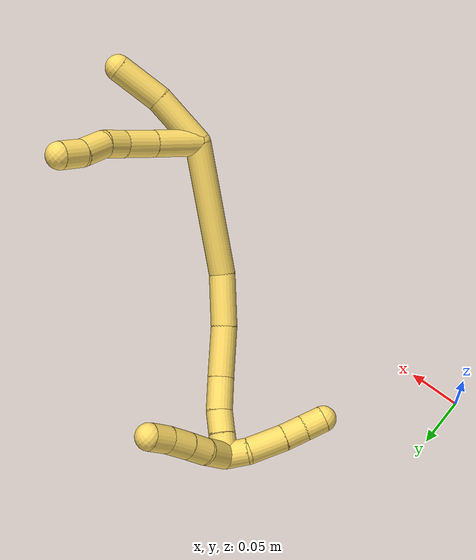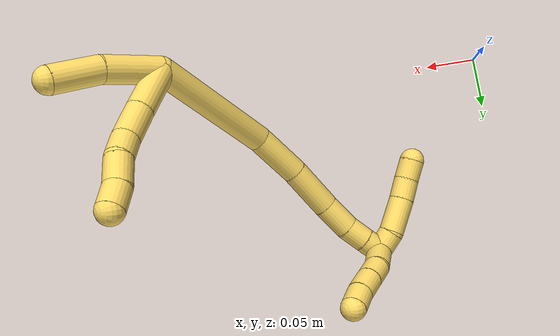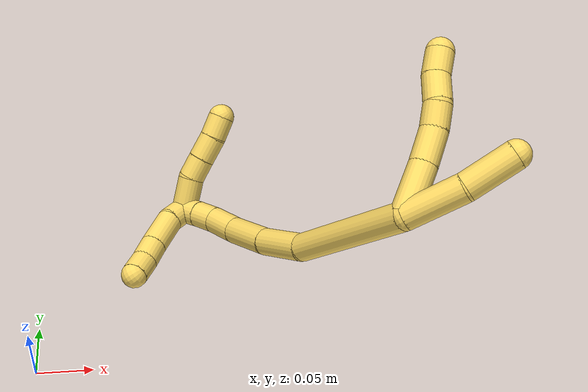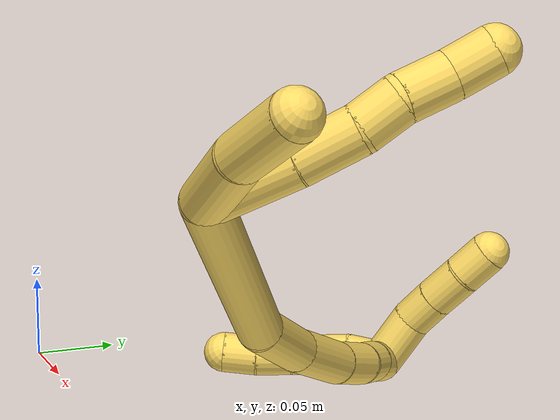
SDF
<sdf version="1.7">
 <world name="default">
  <model name="5">
   <static>0</static>
   <link name="5">
    <collision name="collision-cylinder-e_1_2_8">
     <pose>-0.013794 0.010581 0.015508 -0.598735 -0.633657 0.201705</pose>
     <geometry><cylinder><radius>0.0125</radius><length>0.046593</length></cylinder></geometry>
     <surface>
      <friction><ode><mu>1.16</mu><mu2>1.16</mu2><slip1>0</slip1><slip2>0</slip2></ode></friction>
      <contact><ode><kp>1e+06</kp><kd>1</kd><max_vel>0</max_vel><min_depth>0.001</min_depth></ode></contact>
     </surface>
    </collision>
    <visual name="visual-cylinder-e_1_2_8">
     <pose>-0.013794 0.010581 0.015508 -0.598735 -0.633657 0.201705</pose>
     <geometry><cylinder><radius>0.0125</radius><length>0.046593</length></cylinder></geometry>
     <material><ambient>1 0.858824 0.4 1</ambient></material>
    </visual>
    <collision name="collision-cylinder-e_2_8_9">
     <pose>-0.037896 0.027601 0.041516 -0.550126 -0.696838 0.20431</pose>
     <geometry><cylinder><radius>0.0125</radius><length>0.032123</length></cylinder></geometry>
     <surface>
      <friction><ode><mu>1.16</mu><mu2>1.16</mu2><slip1>0</slip1><slip2>0</slip2></ode></friction>
      <contact><ode><kp>1e+06</kp><kd>1</kd><max_vel>0</max_vel><min_depth>0.001</min_depth></ode></contact>
     </surface>
    </collision>
    <visual name="visual-cylinder-e_2_8_9">
     <pose>-0.037896 0.027601 0.041516 -0.550126 -0.696838 0.20431</pose>
     <geometry><cylinder><radius>0.0125</radius><length>0.032123</length></cylinder></geometry>
     <material><ambient>1 0.858824 0.4 1</ambient></material>
    </visual>
    <collision name="collision-cylinder-e_3_9_10">
     <pose>-0.056779 0.036948 0.058639 -0.413625 -0.870072 0.194398</pose>
     <geometry><cylinder><radius>0.0125</radius><length>0.022437</length></cylinder></geometry>
     <surface>
      <friction><ode><mu>1.16</mu><mu2>1.16</mu2><slip1>0</slip1><slip2>0</slip2></ode></friction>
      <contact><ode><kp>1e+06</kp><kd>1</kd><max_vel>0</max_vel><min_depth>0.001</min_depth></ode></contact>
     </surface>
    </collision>
    <visual name="visual-cylinder-e_3_9_10">
     <pose>-0.056779 0.036948 0.058639 -0.413625 -0.870072 0.194398</pose>
     <geometry><cylinder><radius>0.0125</radius><length>0.022437</length></cylinder></geometry>
     <material><ambient>1 0.858824 0.4 1</ambient></material>
    </visual>
    <collision name="collision-cylinder-e_4_10_11">
     <pose>-0.076038 0.045686 0.069958 -0.892914 -0.959608 0.48825</pose>
     <geometry><cylinder><radius>0.0125</radius><length>0.02609</length></cylinder></geometry>
     <surface>
      <friction><ode><mu>1.16</mu><mu2>1.16</mu2><slip1>0</slip1><slip2>0</slip2></ode></friction>
      <contact><ode><kp>1e+06</kp><kd>1</kd><max_vel>0</max_vel><min_depth>0.001</min_depth></ode></contact>
     </surface>
    </collision>
    <visual name="visual-cylinder-e_4_10_11">
     <pose>-0.076038 0.045686 0.069958 -0.892914 -0.959608 0.48825</pose>
     <geometry><cylinder><radius>0.0125</radius><length>0.02609</length></cylinder></geometry>
     <material><ambient>1 0.858824 0.4 1</ambient></material>
    </visual>
    <collision name="collision-cylinder-e_5_11_6">
     <pose>-0.095043 0.055821 0.081109 -0.587998 -0.820306 0.261794</pose>
     <geometry><cylinder><radius>0.0125</radius><length>0.022757</length></cylinder></geometry>
     <surface>
      <friction><ode><mu>1.16</mu><mu2>1.16</mu2><slip1>0</slip1><slip2>0</slip2></ode></friction>
      <contact><ode><kp>1e+06</kp><kd>1</kd><max_vel>0</max_vel><min_depth>0.001</min_depth></ode></contact>
     </surface>
    </collision>
    <visual name="visual-cylinder-e_5_11_6">
     <pose>-0.095043 0.055821 0.081109 -0.587998 -0.820306 0.261794</pose>
     <geometry><cylinder><radius>0.0125</radius><length>0.022757</length></cylinder></geometry>
     <material><ambient>1 0.858824 0.4 1</ambient></material>
    </visual>
    <collision name="collision-cylinder-e_1_2_12">
     <pose>0.002842 -0.001008 0.026712 0.037735 0.105905 0.002</pose>
     <geometry><cylinder><radius>0.0125</radius><length>0.053763</length></cylinder></geometry>
     <surface>
      <friction><ode><mu>1.16</mu><mu2>1.16</mu2><slip1>0</slip1><slip2>0</slip2></ode></friction>
      <contact><ode><kp>1e+06</kp><kd>1</kd><max_vel>0</max_vel><min_depth>0.001</min_depth></ode></contact>
     </surface>
    </collision>
    <visual name="visual-cylinder-e_1_2_12">
     <pose>0.002842 -0.001008 0.026712 0.037735 0.105905 0.002</pose>
     <geometry><cylinder><radius>0.0125</radius><length>0.053763</length></cylinder></geometry>
     <material><ambient>1 0.858824 0.4 1</ambient></material>
    </visual>
    <collision name="collision-cylinder-e_2_12_5">
     <pose>0.004952 0.000772 0.076362 -0.120985 -0.031634 0.001916</pose>
     <geometry><cylinder><radius>0.0125</radius><length>0.046237</length></cylinder></geometry>
     <surface>
      <friction><ode><mu>1.16</mu><mu2>1.16</mu2><slip1>0</slip1><slip2>0</slip2></ode></friction>
      <contact><ode><kp>1e+06</kp><kd>1</kd><max_vel>0</max_vel><min_depth>0.001</min_depth></ode></contact>
     </surface>
    </collision>
    <visual name="visual-cylinder-e_2_12_5">
     <pose>0.004952 0.000772 0.076362 -0.120985 -0.031634 0.001916</pose>
     <geometry><cylinder><radius>0.0125</radius><length>0.046237</length></cylinder></geometry>
     <material><ambient>1 0.858824 0.4 1</ambient></material>
    </visual>
    <collision name="collision-cylinder-e_1_2_13">
     <pose>-0.012463 0.034391 -0.052023 -2.55748 -0.197247 0.635865</pose>
     <geometry><cylinder><radius>0.0125</radius><length>0.127192</length></cylinder></geometry>
     <surface>
      <friction><ode><mu>1.16</mu><mu2>1.16</mu2><slip1>0</slip1><slip2>0</slip2></ode></friction>
      <contact><ode><kp>1e+06</kp><kd>1</kd><max_vel>0</max_vel><min_depth>0.001</min_depth></ode></contact>
     </surface>
    </collision>
    <visual name="visual-cylinder-e_1_2_13">
     <pose>-0.012463 0.034391 -0.052023 -2.55748 -0.197247 0.635865</pose>
     <geometry><cylinder><radius>0.0125</radius><length>0.127192</length></cylinder></geometry>
     <material><ambient>1 0.858824 0.4 1</ambient></material>
    </visual>
    <collision name="collision-cylinder-e_2_13_14">
     <pose>-0.036728 0.082862 -0.121225 -2.45497 -0.488412 1.21751</pose>
     <geometry><cylinder><radius>0.0125</radius><length>0.050306</length></cylinder></geometry>
     <surface>
      <friction><ode><mu>1.16</mu><mu2>1.16</mu2><slip1>0</slip1><slip2>0</slip2></ode></friction>
      <contact><ode><kp>1e+06</kp><kd>1</kd><max_vel>0</max_vel><min_depth>0.001</min_depth></ode></contact>
     </surface>
    </collision>
    <visual name="visual-cylinder-e_2_13_14">
     <pose>-0.036728 0.082862 -0.121225 -2.45497 -0.488412 1.21751</pose>
     <geometry><cylinder><radius>0.0125</radius><length>0.050306</length></cylinder></geometry>
     <material><ambient>1 0.858824 0.4 1</ambient></material>
    </visual>
    <collision name="collision-cylinder-e_3_14_15">
     <pose>-0.06181 0.111447 -0.152764 -2.35121 -0.576819 1.23645</pose>
     <geometry><cylinder><radius>0.0125</radius><length>0.048701</length></cylinder></geometry>
     <surface>
      <friction><ode><mu>1.16</mu><mu2>1.16</mu2><slip1>0</slip1><slip2>0</slip2></ode></friction>
      <contact><ode><kp>1e+06</kp><kd>1</kd><max_vel>0</max_vel><min_depth>0.001</min_depth></ode></contact>
     </surface>
    </collision>
    <visual name="visual-cylinder-e_3_14_15">
     <pose>-0.06181 0.111447 -0.152764 -2.35121 -0.576819 1.23645</pose>
     <geometry><cylinder><radius>0.0125</radius><length>0.048701</length></cylinder></geometry>
     <material><ambient>1 0.858824 0.4 1</ambient></material>
    </visual>
    <collision name="collision-cylinder-e_4_15_16">
     <pose>-0.0854 0.134216 -0.175965 -2.38986 -0.70561 1.50157</pose>
     <geometry><cylinder><radius>0.0125</radius><length>0.031798</length></cylinder></geometry>
     <surface>
      <friction><ode><mu>1.16</mu><mu2>1.16</mu2><slip1>0</slip1><slip2>0</slip2></ode></friction>
      <contact><ode><kp>1e+06</kp><kd>1</kd><max_vel>0</max_vel><min_depth>0.001</min_depth></ode></contact>
     </surface>
    </collision>
    <visual name="visual-cylinder-e_4_15_16">
     <pose>-0.0854 0.134216 -0.175965 -2.38986 -0.70561 1.50157</pose>
     <geometry><cylinder><radius>0.0125</radius><length>0.031798</length></cylinder></geometry>
     <material><ambient>1 0.858824 0.4 1</ambient></material>
    </visual>
    <collision name="collision-cylinder-e_5_16_17">
     <pose>-0.103018 0.146588 -0.191839 -2.6131 -0.731253 1.9111</pose>
     <geometry><cylinder><radius>0.0125</radius><length>0.021884</length></cylinder></geometry>
     <surface>
      <friction><ode><mu>1.16</mu><mu2>1.16</mu2><slip1>0</slip1><slip2>0</slip2></ode></friction>
      <contact><ode><kp>1e+06</kp><kd>1</kd><max_vel>0</max_vel><min_depth>0.001</min_depth></ode></contact>
     </surface>
    </collision>
    <visual name="visual-cylinder-e_5_16_17">
     <pose>-0.103018 0.146588 -0.191839 -2.6131 -0.731253 1.9111</pose>
     <geometry><cylinder><radius>0.0125</radius><length>0.021884</length></cylinder></geometry>
     <material><ambient>1 0.858824 0.4 1</ambient></material>
    </visual>
    <collision name="collision-cylinder-e_6_17_1">
     <pose>-0.116631 0.154585 -0.205677 -2.62218 -0.677525 1.84934</pose>
     <geometry><cylinder><radius>0.0125</radius><length>0.02012</length></cylinder></geometry>
     <surface>
      <friction><ode><mu>1.16</mu><mu2>1.16</mu2><slip1>0</slip1><slip2>0</slip2></ode></friction>
      <contact><ode><kp>1e+06</kp><kd>1</kd><max_vel>0</max_vel><min_depth>0.001</min_depth></ode></contact>
     </surface>
    </collision>
    <visual name="visual-cylinder-e_6_17_1">
     <pose>-0.116631 0.154585 -0.205677 -2.62218 -0.677525 1.84934</pose>
     <geometry><cylinder><radius>0.0125</radius><length>0.02012</length></cylinder></geometry>
     <material><ambient>1 0.858824 0.4 1</ambient></material>
    </visual>
    <collision name="collision-cylinder-e_1_1_18">
     <pose>-0.121274 0.149562 -0.218549 2.16852 0.153053 0.287915</pose>
     <geometry><cylinder><radius>0.0125</radius><length>0.021822</length></cylinder></geometry>
     <surface>
      <friction><ode><mu>1.16</mu><mu2>1.16</mu2><slip1>0</slip1><slip2>0</slip2></ode></friction>
      <contact><ode><kp>1e+06</kp><kd>1</kd><max_vel>0</max_vel><min_depth>0.001</min_depth></ode></contact>
     </surface>
    </collision>
    <visual name="visual-cylinder-e_1_1_18">
     <pose>-0.121274 0.149562 -0.218549 2.16852 0.153053 0.287915</pose>
     <geometry><cylinder><radius>0.0125</radius><length>0.021822</length></cylinder></geometry>
     <material><ambient>1 0.858824 0.4 1</ambient></material>
    </visual>
    <collision name="collision-cylinder-e_2_18_19">
     <pose>-0.111793 0.127243 -0.233455 2.15365 0.45311 0.808924</pose>
     <geometry><cylinder><radius>0.0125</radius><length>0.035717</length></cylinder></geometry>
     <surface>
      <friction><ode><mu>1.16</mu><mu2>1.16</mu2><slip1>0</slip1><slip2>0</slip2></ode></friction>
      <contact><ode><kp>1e+06</kp><kd>1</kd><max_vel>0</max_vel><min_depth>0.001</min_depth></ode></contact>
     </surface>
    </collision>
    <visual name="visual-cylinder-e_2_18_19">
     <pose>-0.111793 0.127243 -0.233455 2.15365 0.45311 0.808924</pose>
     <geometry><cylinder><radius>0.0125</radius><length>0.035717</length></cylinder></geometry>
     <material><ambient>1 0.858824 0.4 1</ambient></material>
    </visual>
    <collision name="collision-cylinder-e_3_19_20">
     <pose>-0.098932 0.10541 -0.246931 2.07386 0.482875 0.789409</pose>
     <geometry><cylinder><radius>0.0125</radius><length>0.021722</length></cylinder></geometry>
     <surface>
      <friction><ode><mu>1.16</mu><mu2>1.16</mu2><slip1>0</slip1><slip2>0</slip2></ode></friction>
      <contact><ode><kp>1e+06</kp><kd>1</kd><max_vel>0</max_vel><min_depth>0.001</min_depth></ode></contact>
     </surface>
    </collision>
    <visual name="visual-cylinder-e_3_19_20">
     <pose>-0.098932 0.10541 -0.246931 2.07386 0.482875 0.789409</pose>
     <geometry><cylinder><radius>0.0125</radius><length>0.021722</length></cylinder></geometry>
     <material><ambient>1 0.858824 0.4 1</ambient></material>
    </visual>
    <collision name="collision-cylinder-e_4_20_4">
     <pose>-0.089897 0.088308 -0.255612 2.00702 0.395188 0.608908</pose>
     <geometry><cylinder><radius>0.0125</radius><length>0.020739</length></cylinder></geometry>
     <surface>
      <friction><ode><mu>1.16</mu><mu2>1.16</mu2><slip1>0</slip1><slip2>0</slip2></ode></friction>
      <contact><ode><kp>1e+06</kp><kd>1</kd><max_vel>0</max_vel><min_depth>0.001</min_depth></ode></contact>
     </surface>
    </collision>
    <visual name="visual-cylinder-e_4_20_4">
     <pose>-0.089897 0.088308 -0.255612 2.00702 0.395188 0.608908</pose>
     <geometry><cylinder><radius>0.0125</radius><length>0.020739</length></cylinder></geometry>
     <material><ambient>1 0.858824 0.4 1</ambient></material>
    </visual>
    <collision name="collision-cylinder-e_1_1_21">
     <pose>-0.134346 0.157315 -0.20039 0.095645 -0.754058 -0.037897</pose>
     <geometry><cylinder><radius>0.0125</radius><length>0.033329</length></cylinder></geometry>
     <surface>
      <friction><ode><mu>1.16</mu><mu2>1.16</mu2><slip1>0</slip1><slip2>0</slip2></ode></friction>
      <contact><ode><kp>1e+06</kp><kd>1</kd><max_vel>0</max_vel><min_depth>0.001</min_depth></ode></contact>
     </surface>
    </collision>
    <visual name="visual-cylinder-e_1_1_21">
     <pose>-0.134346 0.157315 -0.20039 0.095645 -0.754058 -0.037897</pose>
     <geometry><cylinder><radius>0.0125</radius><length>0.033329</length></cylinder></geometry>
     <material><ambient>1 0.858824 0.4 1</ambient></material>
    </visual>
    <collision name="collision-cylinder-e_2_21_22">
     <pose>-0.151037 0.156834 -0.179033 -0.073158 -0.517053 0.019354</pose>
     <geometry><cylinder><radius>0.0125</radius><length>0.021373</length></cylinder></geometry>
     <surface>
      <friction><ode><mu>1.16</mu><mu2>1.16</mu2><slip1>0</slip1><slip2>0</slip2></ode></friction>
      <contact><ode><kp>1e+06</kp><kd>1</kd><max_vel>0</max_vel><min_depth>0.001</min_depth></ode></contact>
     </surface>
    </collision>
    <visual name="visual-cylinder-e_2_21_22">
     <pose>-0.151037 0.156834 -0.179033 -0.073158 -0.517053 0.019354</pose>
     <geometry><cylinder><radius>0.0125</radius><length>0.021373</length></cylinder></geometry>
     <material><ambient>1 0.858824 0.4 1</ambient></material>
    </visual>
    <collision name="collision-cylinder-e_3_22_23">
     <pose>-0.162194 0.15866 -0.159427 -0.110408 -0.513925 0.029039</pose>
     <geometry><cylinder><radius>0.0125</radius><length>0.023898</length></cylinder></geometry>
     <surface>
      <friction><ode><mu>1.16</mu><mu2>1.16</mu2><slip1>0</slip1><slip2>0</slip2></ode></friction>
      <contact><ode><kp>1e+06</kp><kd>1</kd><max_vel>0</max_vel><min_depth>0.001</min_depth></ode></contact>
     </surface>
    </collision>
    <visual name="visual-cylinder-e_3_22_23">
     <pose>-0.162194 0.15866 -0.159427 -0.110408 -0.513925 0.029039</pose>
     <geometry><cylinder><radius>0.0125</radius><length>0.023898</length></cylinder></geometry>
     <material><ambient>1 0.858824 0.4 1</ambient></material>
    </visual>
    <collision name="collision-cylinder-e_4_23_3">
     <pose>-0.174363 0.161086 -0.140527 -0.148416 -0.62896 0.048355</pose>
     <geometry><cylinder><radius>0.0125</radius><length>0.0214</length></cylinder></geometry>
     <surface>
      <friction><ode><mu>1.16</mu><mu2>1.16</mu2><slip1>0</slip1><slip2>0</slip2></ode></friction>
      <contact><ode><kp>1e+06</kp><kd>1</kd><max_vel>0</max_vel><min_depth>0.001</min_depth></ode></contact>
     </surface>
    </collision>
    <visual name="visual-cylinder-e_4_23_3">
     <pose>-0.174363 0.161086 -0.140527 -0.148416 -0.62896 0.048355</pose>
     <geometry><cylinder><radius>0.0125</radius><length>0.0214</length></cylinder></geometry>
     <material><ambient>1 0.858824 0.4 1</ambient></material>
    </visual>
    <collision name="collision-sphere-3">
     <pose>-0.180658 0.162365 -0.13197 0 -0 0</pose>
     <geometry><sphere><radius>0.0125</radius></sphere></geometry>
     <surface>
      <friction><ode><mu>1.16</mu><mu2>1.16</mu2><slip1>0</slip1><slip2>0</slip2></ode></friction>
      <contact><ode><kp>1e+06</kp><kd>1</kd><max_vel>0</max_vel><min_depth>0.001</min_depth></ode></contact>
     </surface>
    </collision>
    <visual name="visual-sphere-3">
     <pose>-0.180658 0.162365 -0.13197 0 -0 0</pose>
     <geometry><sphere><radius>0.0125</radius></sphere></geometry>
     <material><ambient>1 0.858824 0.4 1</ambient></material>
    </visual>
    <collision name="collision-sphere-23">
     <pose>-0.168068 0.159806 -0.149085 0 -0 0</pose>
     <geometry><sphere><radius>0.0125</radius></sphere></geometry>
     <surface>
      <friction><ode><mu>1.16</mu><mu2>1.16</mu2><slip1>0</slip1><slip2>0</slip2></ode></friction>
      <contact><ode><kp>1e+06</kp><kd>1</kd><max_vel>0</max_vel><min_depth>0.001</min_depth></ode></contact>
     </surface>
    </collision>
    <visual name="visual-sphere-23">
     <pose>-0.168068 0.159806 -0.149085 0 -0 0</pose>
     <geometry><sphere><radius>0.0125</radius></sphere></geometry>
     <material><ambient>1 0.858824 0.4 1</ambient></material>
    </visual>
    <collision name="collision-sphere-22">
     <pose>-0.15632 0.157513 -0.169769 0 -0 0</pose>
     <geometry><sphere><radius>0.0125</radius></sphere></geometry>
     <surface>
      <friction><ode><mu>1.16</mu><mu2>1.16</mu2><slip1>0</slip1><slip2>0</slip2></ode></friction>
      <contact><ode><kp>1e+06</kp><kd>1</kd><max_vel>0</max_vel><min_depth>0.001</min_depth></ode></contact>
     </surface>
    </collision>
    <visual name="visual-sphere-22">
     <pose>-0.15632 0.157513 -0.169769 0 -0 0</pose>
     <geometry><sphere><radius>0.0125</radius></sphere></geometry>
     <material><ambient>1 0.858824 0.4 1</ambient></material>
    </visual>
    <collision name="collision-sphere-21">
     <pose>-0.145754 0.156155 -0.188298 0 -0 0</pose>
     <geometry><sphere><radius>0.0125</radius></sphere></geometry>
     <surface>
      <friction><ode><mu>1.16</mu><mu2>1.16</mu2><slip1>0</slip1><slip2>0</slip2></ode></friction>
      <contact><ode><kp>1e+06</kp><kd>1</kd><max_vel>0</max_vel><min_depth>0.001</min_depth></ode></contact>
     </surface>
    </collision>
    <visual name="visual-sphere-21">
     <pose>-0.145754 0.156155 -0.188298 0 -0 0</pose>
     <geometry><sphere><radius>0.0125</radius></sphere></geometry>
     <material><ambient>1 0.858824 0.4 1</ambient></material>
    </visual>
    <collision name="collision-sphere-4">
     <pose>-0.085905 0.079634 -0.259655 0 -0 0</pose>
     <geometry><sphere><radius>0.0125</radius></sphere></geometry>
     <surface>
      <friction><ode><mu>1.16</mu><mu2>1.16</mu2><slip1>0</slip1><slip2>0</slip2></ode></friction>
      <contact><ode><kp>1e+06</kp><kd>1</kd><max_vel>0</max_vel><min_depth>0.001</min_depth></ode></contact>
     </surface>
    </collision>
    <visual name="visual-sphere-4">
     <pose>-0.085905 0.079634 -0.259655 0 -0 0</pose>
     <geometry><sphere><radius>0.0125</radius></sphere></geometry>
     <material><ambient>1 0.858824 0.4 1</ambient></material>
    </visual>
    <collision name="collision-sphere-20">
     <pose>-0.093889 0.096982 -0.251568 0 -0 0</pose>
     <geometry><sphere><radius>0.0125</radius></sphere></geometry>
     <surface>
      <friction><ode><mu>1.16</mu><mu2>1.16</mu2><slip1>0</slip1><slip2>0</slip2></ode></friction>
      <contact><ode><kp>1e+06</kp><kd>1</kd><max_vel>0</max_vel><min_depth>0.001</min_depth></ode></contact>
     </surface>
    </collision>
    <visual name="visual-sphere-20">
     <pose>-0.093889 0.096982 -0.251568 0 -0 0</pose>
     <geometry><sphere><radius>0.0125</radius></sphere></geometry>
     <material><ambient>1 0.858824 0.4 1</ambient></material>
    </visual>
    <collision name="collision-sphere-6">
     <pose>-0.103364 0.060126 0.087566 0 -0 0</pose>
     <geometry><sphere><radius>0.0125</radius></sphere></geometry>
     <surface>
      <friction><ode><mu>1.16</mu><mu2>1.16</mu2><slip1>0</slip1><slip2>0</slip2></ode></friction>
      <contact><ode><kp>1e+06</kp><kd>1</kd><max_vel>0</max_vel><min_depth>0.001</min_depth></ode></contact>
     </surface>
    </collision>
    <visual name="visual-sphere-6">
     <pose>-0.103364 0.060126 0.087566 0 -0 0</pose>
     <geometry><sphere><radius>0.0125</radius></sphere></geometry>
     <material><ambient>1 0.858824 0.4 1</ambient></material>
    </visual>
    <collision name="collision-sphere-11">
     <pose>-0.086721 0.051516 0.074652 0 -0 0</pose>
     <geometry><sphere><radius>0.0125</radius></sphere></geometry>
     <surface>
      <friction><ode><mu>1.16</mu><mu2>1.16</mu2><slip1>0</slip1><slip2>0</slip2></ode></friction>
      <contact><ode><kp>1e+06</kp><kd>1</kd><max_vel>0</max_vel><min_depth>0.001</min_depth></ode></contact>
     </surface>
    </collision>
    <visual name="visual-sphere-11">
     <pose>-0.086721 0.051516 0.074652 0 -0 0</pose>
     <geometry><sphere><radius>0.0125</radius></sphere></geometry>
     <material><ambient>1 0.858824 0.4 1</ambient></material>
    </visual>
    <collision name="collision-sphere-10">
     <pose>-0.065354 0.039855 0.065263 0 -0 0</pose>
     <geometry><sphere><radius>0.0125</radius></sphere></geometry>
     <surface>
      <friction><ode><mu>1.16</mu><mu2>1.16</mu2><slip1>0</slip1><slip2>0</slip2></ode></friction>
      <contact><ode><kp>1e+06</kp><kd>1</kd><max_vel>0</max_vel><min_depth>0.001</min_depth></ode></contact>
     </surface>
    </collision>
    <visual name="visual-sphere-10">
     <pose>-0.065354 0.039855 0.065263 0 -0 0</pose>
     <geometry><sphere><radius>0.0125</radius></sphere></geometry>
     <material><ambient>1 0.858824 0.4 1</ambient></material>
    </visual>
    <collision name="collision-sphere-9">
     <pose>-0.048204 0.034041 0.052016 0 -0 0</pose>
     <geometry><sphere><radius>0.0125</radius></sphere></geometry>
     <surface>
      <friction><ode><mu>1.16</mu><mu2>1.16</mu2><slip1>0</slip1><slip2>0</slip2></ode></friction>
      <contact><ode><kp>1e+06</kp><kd>1</kd><max_vel>0</max_vel><min_depth>0.001</min_depth></ode></contact>
     </surface>
    </collision>
    <visual name="visual-sphere-9">
     <pose>-0.048204 0.034041 0.052016 0 -0 0</pose>
     <geometry><sphere><radius>0.0125</radius></sphere></geometry>
     <material><ambient>1 0.858824 0.4 1</ambient></material>
    </visual>
    <collision name="collision-sphere-2">
     <geometry><sphere><radius>0.0125</radius></sphere></geometry>
     <surface>
      <friction><ode><mu>1.16</mu><mu2>1.16</mu2><slip1>0</slip1><slip2>0</slip2></ode></friction>
      <contact><ode><kp>1e+06</kp><kd>1</kd><max_vel>0</max_vel><min_depth>0.001</min_depth></ode></contact>
     </surface>
    </collision>
    <visual name="visual-sphere-2">
     <geometry><sphere><radius>0.0125</radius></sphere></geometry>
     <material><ambient>1 0.858824 0.4 1</ambient></material>
    </visual>
    <collision name="collision-sphere-19">
     <pose>-0.103975 0.113837 -0.242293 0 -0 0</pose>
     <geometry><sphere><radius>0.0125</radius></sphere></geometry>
     <surface>
      <friction><ode><mu>1.16</mu><mu2>1.16</mu2><slip1>0</slip1><slip2>0</slip2></ode></friction>
      <contact><ode><kp>1e+06</kp><kd>1</kd><max_vel>0</max_vel><min_depth>0.001</min_depth></ode></contact>
     </surface>
    </collision>
    <visual name="visual-sphere-19">
     <pose>-0.103975 0.113837 -0.242293 0 -0 0</pose>
     <geometry><sphere><radius>0.0125</radius></sphere></geometry>
     <material><ambient>1 0.858824 0.4 1</ambient></material>
    </visual>
    <collision name="collision-sphere-8">
     <pose>-0.027588 0.021162 0.031016 0 -0 0</pose>
     <geometry><sphere><radius>0.0125</radius></sphere></geometry>
     <surface>
      <friction><ode><mu>1.16</mu><mu2>1.16</mu2><slip1>0</slip1><slip2>0</slip2></ode></friction>
      <contact><ode><kp>1e+06</kp><kd>1</kd><max_vel>0</max_vel><min_depth>0.001</min_depth></ode></contact>
     </surface>
    </collision>
    <visual name="visual-sphere-8">
     <pose>-0.027588 0.021162 0.031016 0 -0 0</pose>
     <geometry><sphere><radius>0.0125</radius></sphere></geometry>
     <material><ambient>1 0.858824 0.4 1</ambient></material>
    </visual>
    <collision name="collision-sphere-12">
     <pose>0.005683 -0.002017 0.053424 0 -0 0</pose>
     <geometry><sphere><radius>0.0125</radius></sphere></geometry>
     <surface>
      <friction><ode><mu>1.16</mu><mu2>1.16</mu2><slip1>0</slip1><slip2>0</slip2></ode></friction>
      <contact><ode><kp>1e+06</kp><kd>1</kd><max_vel>0</max_vel><min_depth>0.001</min_depth></ode></contact>
     </surface>
    </collision>
    <visual name="visual-sphere-12">
     <pose>0.005683 -0.002017 0.053424 0 -0 0</pose>
     <geometry><sphere><radius>0.0125</radius></sphere></geometry>
     <material><ambient>1 0.858824 0.4 1</ambient></material>
    </visual>
    <collision name="collision-sphere-5">
     <pose>0.004221 0.003561 0.0993 0 -0 0</pose>
     <geometry><sphere><radius>0.0125</radius></sphere></geometry>
     <surface>
      <friction><ode><mu>1.16</mu><mu2>1.16</mu2><slip1>0</slip1><slip2>0</slip2></ode></friction>
      <contact><ode><kp>1e+06</kp><kd>1</kd><max_vel>0</max_vel><min_depth>0.001</min_depth></ode></contact>
     </surface>
    </collision>
    <visual name="visual-sphere-5">
     <pose>0.004221 0.003561 0.0993 0 -0 0</pose>
     <geometry><sphere><radius>0.0125</radius></sphere></geometry>
     <material><ambient>1 0.858824 0.4 1</ambient></material>
    </visual>
    <collision name="collision-sphere-13">
     <pose>-0.024926 0.068781 -0.104046 0 -0 0</pose>
     <geometry><sphere><radius>0.0125</radius></sphere></geometry>
     <surface>
      <friction><ode><mu>1.16</mu><mu2>1.16</mu2><slip1>0</slip1><slip2>0</slip2></ode></friction>
      <contact><ode><kp>1e+06</kp><kd>1</kd><max_vel>0</max_vel><min_depth>0.001</min_depth></ode></contact>
     </surface>
    </collision>
    <visual name="visual-sphere-13">
     <pose>-0.024926 0.068781 -0.104046 0 -0 0</pose>
     <geometry><sphere><radius>0.0125</radius></sphere></geometry>
     <material><ambient>1 0.858824 0.4 1</ambient></material>
    </visual>
    <collision name="collision-sphere-14">
     <pose>-0.048531 0.096943 -0.138404 0 -0 0</pose>
     <geometry><sphere><radius>0.0125</radius></sphere></geometry>
     <surface>
      <friction><ode><mu>1.16</mu><mu2>1.16</mu2><slip1>0</slip1><slip2>0</slip2></ode></friction>
      <contact><ode><kp>1e+06</kp><kd>1</kd><max_vel>0</max_vel><min_depth>0.001</min_depth></ode></contact>
     </surface>
    </collision>
    <visual name="visual-sphere-14">
     <pose>-0.048531 0.096943 -0.138404 0 -0 0</pose>
     <geometry><sphere><radius>0.0125</radius></sphere></geometry>
     <material><ambient>1 0.858824 0.4 1</ambient></material>
    </visual>
    <collision name="collision-sphere-15">
     <pose>-0.07509 0.125951 -0.167124 0 -0 0</pose>
     <geometry><sphere><radius>0.0125</radius></sphere></geometry>
     <surface>
      <friction><ode><mu>1.16</mu><mu2>1.16</mu2><slip1>0</slip1><slip2>0</slip2></ode></friction>
      <contact><ode><kp>1e+06</kp><kd>1</kd><max_vel>0</max_vel><min_depth>0.001</min_depth></ode></contact>
     </surface>
    </collision>
    <visual name="visual-sphere-15">
     <pose>-0.07509 0.125951 -0.167124 0 -0 0</pose>
     <geometry><sphere><radius>0.0125</radius></sphere></geometry>
     <material><ambient>1 0.858824 0.4 1</ambient></material>
    </visual>
    <collision name="collision-sphere-16">
     <pose>-0.095711 0.142481 -0.184806 0 -0 0</pose>
     <geometry><sphere><radius>0.0125</radius></sphere></geometry>
     <surface>
      <friction><ode><mu>1.16</mu><mu2>1.16</mu2><slip1>0</slip1><slip2>0</slip2></ode></friction>
      <contact><ode><kp>1e+06</kp><kd>1</kd><max_vel>0</max_vel><min_depth>0.001</min_depth></ode></contact>
     </surface>
    </collision>
    <visual name="visual-sphere-16">
     <pose>-0.095711 0.142481 -0.184806 0 -0 0</pose>
     <geometry><sphere><radius>0.0125</radius></sphere></geometry>
     <material><ambient>1 0.858824 0.4 1</ambient></material>
    </visual>
    <collision name="collision-sphere-17">
     <pose>-0.110325 0.150694 -0.198873 0 -0 0</pose>
     <geometry><sphere><radius>0.0125</radius></sphere></geometry>
     <surface>
      <friction><ode><mu>1.16</mu><mu2>1.16</mu2><slip1>0</slip1><slip2>0</slip2></ode></friction>
      <contact><ode><kp>1e+06</kp><kd>1</kd><max_vel>0</max_vel><min_depth>0.001</min_depth></ode></contact>
     </surface>
    </collision>
    <visual name="visual-sphere-17">
     <pose>-0.110325 0.150694 -0.198873 0 -0 0</pose>
     <geometry><sphere><radius>0.0125</radius></sphere></geometry>
     <material><ambient>1 0.858824 0.4 1</ambient></material>
    </visual>
    <collision name="collision-sphere-1">
     <pose>-0.122937 0.158475 -0.212481 0 -0 0</pose>
     <geometry><sphere><radius>0.0125</radius></sphere></geometry>
     <surface>
      <friction><ode><mu>1.16</mu><mu2>1.16</mu2><slip1>0</slip1><slip2>0</slip2></ode></friction>
      <contact><ode><kp>1e+06</kp><kd>1</kd><max_vel>0</max_vel><min_depth>0.001</min_depth></ode></contact>
     </surface>
    </collision>
    <visual name="visual-sphere-1">
     <pose>-0.122937 0.158475 -0.212481 0 -0 0</pose>
     <geometry><sphere><radius>0.0125</radius></sphere></geometry>
     <material><ambient>1 0.858824 0.4 1</ambient></material>
    </visual>
    <collision name="collision-sphere-18">
     <pose>-0.119611 0.140648 -0.224618 0 -0 0</pose>
     <geometry><sphere><radius>0.0125</radius></sphere></geometry>
     <surface>
      <friction><ode><mu>1.16</mu><mu2>1.16</mu2><slip1>0</slip1><slip2>0</slip2></ode></friction>
      <contact><ode><kp>1e+06</kp><kd>1</kd><max_vel>0</max_vel><min_depth>0.001</min_depth></ode></contact>
     </surface>
    </collision>
    <visual name="visual-sphere-18">
     <pose>-0.119611 0.140648 -0.224618 0 -0 0</pose>
     <geometry><sphere><radius>0.0125</radius></sphere></geometry>
     <material><ambient>1 0.858824 0.4 1</ambient></material>
    </visual>
    <inertial>
     <pose>-0.062166 0.075963 -0.084229 0 -0 0</pose>
     <mass>0.75</mass>
     <inertia>
      <ixx>0.000318</ixx>
      <ixy>0</ixy>
      <ixz>0</ixz>
      <iyy>9.8e-05</iyy>
      <iyz>0</iyz>
      <izz>-4.8e-05</izz>
     </inertia>
    </inertial>
   </link>
   <pose>0.312442 0.004622 0.160888 -0.835756 0.586109 -0.998362</pose>
  </model>
 </world>
</sdf>
